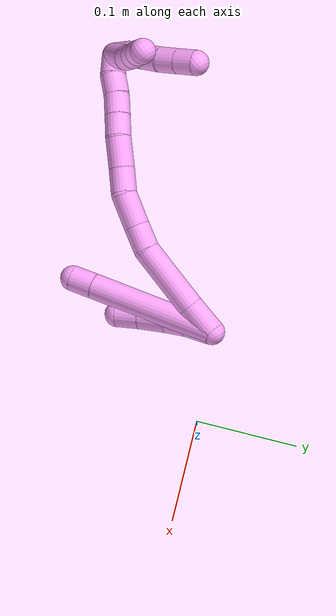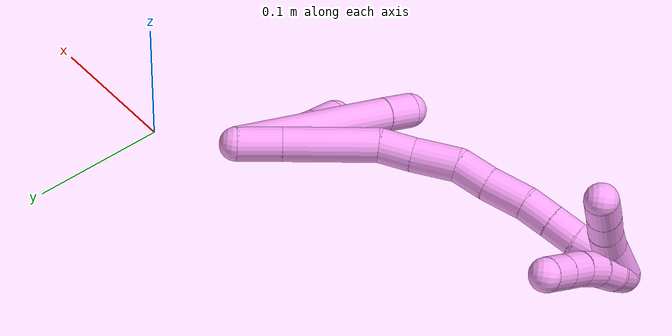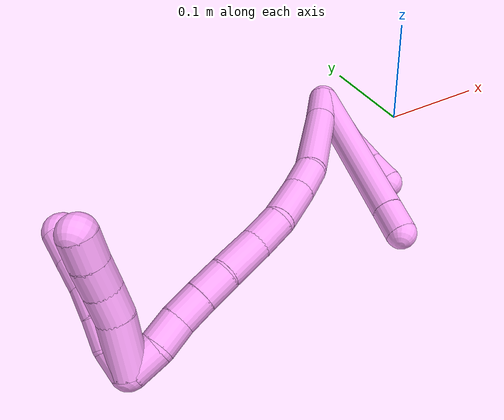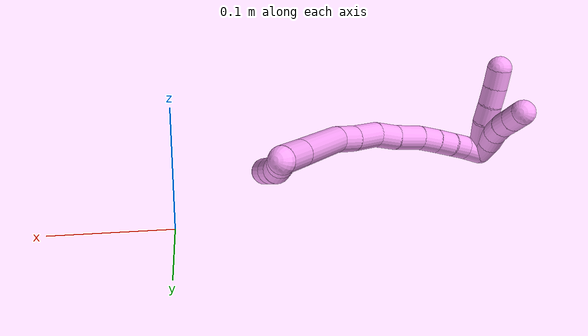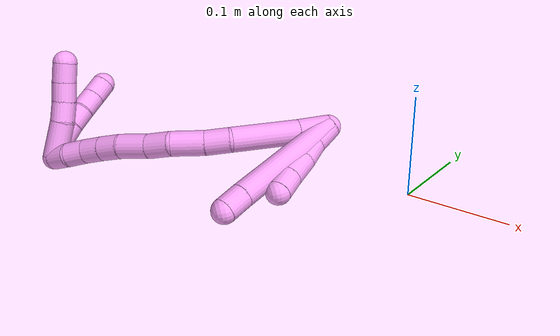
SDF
<sdf version="1.7">
 <world name="default">
  <model name="4">
   <static>0</static>
   <link name="4">
    <collision name="collision-cylinder-e_1_2_8">
     <pose>0.03073 0.013046 0.053865 -0.237629 0.506262 -0.061741</pose>
     <geometry><cylinder><radius>0.0125</radius><length>0.126744</length></cylinder></geometry>
     <surface>
      <friction><ode><mu>1.16</mu><mu2>1.16</mu2><slip1>0</slip1><slip2>0</slip2></ode></friction>
      <contact><ode><kp>1e+06</kp><kd>1</kd><max_vel>0</max_vel><min_depth>0.001</min_depth></ode></contact>
     </surface>
    </collision>
    <visual name="visual-cylinder-e_1_2_8">
     <pose>0.03073 0.013046 0.053865 -0.237629 0.506262 -0.061741</pose>
     <geometry><cylinder><radius>0.0125</radius><length>0.126744</length></cylinder></geometry>
     <material><ambient>1 0.65098 0.996078 1</ambient></material>
    </visual>
    <collision name="collision-cylinder-e_2_8_6">
     <pose>0.067341 0.02821 0.117536 -0.212623 0.530298 -0.057938</pose>
     <geometry><cylinder><radius>0.0125</radius><length>0.023256</length></cylinder></geometry>
     <surface>
      <friction><ode><mu>1.16</mu><mu2>1.16</mu2><slip1>0</slip1><slip2>0</slip2></ode></friction>
      <contact><ode><kp>1e+06</kp><kd>1</kd><max_vel>0</max_vel><min_depth>0.001</min_depth></ode></contact>
     </surface>
    </collision>
    <visual name="visual-cylinder-e_2_8_6">
     <pose>0.067341 0.02821 0.117536 -0.212623 0.530298 -0.057938</pose>
     <geometry><cylinder><radius>0.0125</radius><length>0.023256</length></cylinder></geometry>
     <material><ambient>1 0.65098 0.996078 1</ambient></material>
    </visual>
    <collision name="collision-cylinder-e_1_2_9">
     <pose>0.007643 0.001708 0.010732 -0.157833 0.612954 -0.050039</pose>
     <geometry><cylinder><radius>0.0125</radius><length>0.026571</length></cylinder></geometry>
     <surface>
      <friction><ode><mu>1.16</mu><mu2>1.16</mu2><slip1>0</slip1><slip2>0</slip2></ode></friction>
      <contact><ode><kp>1e+06</kp><kd>1</kd><max_vel>0</max_vel><min_depth>0.001</min_depth></ode></contact>
     </surface>
    </collision>
    <visual name="visual-cylinder-e_1_2_9">
     <pose>0.007643 0.001708 0.010732 -0.157833 0.612954 -0.050039</pose>
     <geometry><cylinder><radius>0.0125</radius><length>0.026571</length></cylinder></geometry>
     <material><ambient>1 0.65098 0.996078 1</ambient></material>
    </visual>
    <collision name="collision-cylinder-e_2_9_10">
     <pose>0.023115 0.004242 0.029582 -0.10144 0.764691 -0.040822</pose>
     <geometry><cylinder><radius>0.0125</radius><length>0.022615</length></cylinder></geometry>
     <surface>
      <friction><ode><mu>1.16</mu><mu2>1.16</mu2><slip1>0</slip1><slip2>0</slip2></ode></friction>
      <contact><ode><kp>1e+06</kp><kd>1</kd><max_vel>0</max_vel><min_depth>0.001</min_depth></ode></contact>
     </surface>
    </collision>
    <visual name="visual-cylinder-e_2_9_10">
     <pose>0.023115 0.004242 0.029582 -0.10144 0.764691 -0.040822</pose>
     <geometry><cylinder><radius>0.0125</radius><length>0.022615</length></cylinder></geometry>
     <material><ambient>1 0.65098 0.996078 1</ambient></material>
    </visual>
    <collision name="collision-cylinder-e_3_10_11">
     <pose>0.039854 0.008937 0.047694 -0.369249 0.693627 -0.134788</pose>
     <geometry><cylinder><radius>0.0125</radius><length>0.027876</length></cylinder></geometry>
     <surface>
      <friction><ode><mu>1.16</mu><mu2>1.16</mu2><slip1>0</slip1><slip2>0</slip2></ode></friction>
      <contact><ode><kp>1e+06</kp><kd>1</kd><max_vel>0</max_vel><min_depth>0.001</min_depth></ode></contact>
     </surface>
    </collision>
    <visual name="visual-cylinder-e_3_10_11">
     <pose>0.039854 0.008937 0.047694 -0.369249 0.693627 -0.134788</pose>
     <geometry><cylinder><radius>0.0125</radius><length>0.027876</length></cylinder></geometry>
     <material><ambient>1 0.65098 0.996078 1</ambient></material>
    </visual>
    <collision name="collision-cylinder-e_4_11_5">
     <pose>0.056443 0.01621 0.065499 -0.411117 0.733441 -0.159829</pose>
     <geometry><cylinder><radius>0.0125</radius><length>0.022937</length></cylinder></geometry>
     <surface>
      <friction><ode><mu>1.16</mu><mu2>1.16</mu2><slip1>0</slip1><slip2>0</slip2></ode></friction>
      <contact><ode><kp>1e+06</kp><kd>1</kd><max_vel>0</max_vel><min_depth>0.001</min_depth></ode></contact>
     </surface>
    </collision>
    <visual name="visual-cylinder-e_4_11_5">
     <pose>0.056443 0.01621 0.065499 -0.411117 0.733441 -0.159829</pose>
     <geometry><cylinder><radius>0.0125</radius><length>0.022937</length></cylinder></geometry>
     <material><ambient>1 0.65098 0.996078 1</ambient></material>
    </visual>
    <collision name="collision-cylinder-e_1_2_12">
     <pose>-0.000477 0.002046 0.015987 -0.127261 -0.029557 0.001883</pose>
     <geometry><cylinder><radius>0.0125</radius><length>0.032248</length></cylinder></geometry>
     <surface>
      <friction><ode><mu>1.16</mu><mu2>1.16</mu2><slip1>0</slip1><slip2>0</slip2></ode></friction>
      <contact><ode><kp>1e+06</kp><kd>1</kd><max_vel>0</max_vel><min_depth>0.001</min_depth></ode></contact>
     </surface>
    </collision>
    <visual name="visual-cylinder-e_1_2_12">
     <pose>-0.000477 0.002046 0.015987 -0.127261 -0.029557 0.001883</pose>
     <geometry><cylinder><radius>0.0125</radius><length>0.032248</length></cylinder></geometry>
     <material><ambient>1 0.65098 0.996078 1</ambient></material>
    </visual>
    <collision name="collision-cylinder-e_2_12_13">
     <pose>-0.003425 0.008414 0.065847 -0.126941 -0.07226 0.004595</pose>
     <geometry><cylinder><radius>0.0125</radius><length>0.068474</length></cylinder></geometry>
     <surface>
      <friction><ode><mu>1.16</mu><mu2>1.16</mu2><slip1>0</slip1><slip2>0</slip2></ode></friction>
      <contact><ode><kp>1e+06</kp><kd>1</kd><max_vel>0</max_vel><min_depth>0.001</min_depth></ode></contact>
     </surface>
    </collision>
    <visual name="visual-cylinder-e_2_12_13">
     <pose>-0.003425 0.008414 0.065847 -0.126941 -0.07226 0.004595</pose>
     <geometry><cylinder><radius>0.0125</radius><length>0.068474</length></cylinder></geometry>
     <material><ambient>1 0.65098 0.996078 1</ambient></material>
    </visual>
    <collision name="collision-cylinder-e_3_13_14">
     <pose>-0.008545 0.011226 0.11184 0.124029 -0.213554 -0.013311</pose>
     <geometry><cylinder><radius>0.0125</radius><length>0.024996</length></cylinder></geometry>
     <surface>
      <friction><ode><mu>1.16</mu><mu2>1.16</mu2><slip1>0</slip1><slip2>0</slip2></ode></friction>
      <contact><ode><kp>1e+06</kp><kd>1</kd><max_vel>0</max_vel><min_depth>0.001</min_depth></ode></contact>
     </surface>
    </collision>
    <visual name="visual-cylinder-e_3_13_14">
     <pose>-0.008545 0.011226 0.11184 0.124029 -0.213554 -0.013311</pose>
     <geometry><cylinder><radius>0.0125</radius><length>0.024996</length></cylinder></geometry>
     <material><ambient>1 0.65098 0.996078 1</ambient></material>
    </visual>
    <collision name="collision-cylinder-e_4_14_15">
     <pose>-0.015948 0.008712 0.139932 0.06271 -0.288736 -0.00912</pose>
     <geometry><cylinder><radius>0.0125</radius><length>0.033389</length></cylinder></geometry>
     <surface>
      <friction><ode><mu>1.16</mu><mu2>1.16</mu2><slip1>0</slip1><slip2>0</slip2></ode></friction>
      <contact><ode><kp>1e+06</kp><kd>1</kd><max_vel>0</max_vel><min_depth>0.001</min_depth></ode></contact>
     </surface>
    </collision>
    <visual name="visual-cylinder-e_4_14_15">
     <pose>-0.015948 0.008712 0.139932 0.06271 -0.288736 -0.00912</pose>
     <geometry><cylinder><radius>0.0125</radius><length>0.033389</length></cylinder></geometry>
     <material><ambient>1 0.65098 0.996078 1</ambient></material>
    </visual>
    <collision name="collision-cylinder-e_5_15_16">
     <pose>-0.02517 0.003016 0.166626 0.412601 -0.364689 -0.07714</pose>
     <geometry><cylinder><radius>0.0125</radius><length>0.025057</length></cylinder></geometry>
     <surface>
      <friction><ode><mu>1.16</mu><mu2>1.16</mu2><slip1>0</slip1><slip2>0</slip2></ode></friction>
      <contact><ode><kp>1e+06</kp><kd>1</kd><max_vel>0</max_vel><min_depth>0.001</min_depth></ode></contact>
     </surface>
    </collision>
    <visual name="visual-cylinder-e_5_15_16">
     <pose>-0.02517 0.003016 0.166626 0.412601 -0.364689 -0.07714</pose>
     <geometry><cylinder><radius>0.0125</radius><length>0.025057</length></cylinder></geometry>
     <material><ambient>1 0.65098 0.996078 1</ambient></material>
    </visual>
    <collision name="collision-cylinder-e_6_16_17">
     <pose>-0.036067 -0.006067 0.190784 0.315779 -0.426885 -0.06899</pose>
     <geometry><cylinder><radius>0.0125</radius><length>0.031058</length></cylinder></geometry>
     <surface>
      <friction><ode><mu>1.16</mu><mu2>1.16</mu2><slip1>0</slip1><slip2>0</slip2></ode></friction>
      <contact><ode><kp>1e+06</kp><kd>1</kd><max_vel>0</max_vel><min_depth>0.001</min_depth></ode></contact>
     </surface>
    </collision>
    <visual name="visual-cylinder-e_6_16_17">
     <pose>-0.036067 -0.006067 0.190784 0.315779 -0.426885 -0.06899</pose>
     <geometry><cylinder><radius>0.0125</radius><length>0.031058</length></cylinder></geometry>
     <material><ambient>1 0.65098 0.996078 1</ambient></material>
    </visual>
    <collision name="collision-cylinder-e_7_17_18">
     <pose>-0.046563 -0.015115 0.213293 0.474368 -0.379417 -0.092768</pose>
     <geometry><cylinder><radius>0.0125</radius><length>0.021958</length></cylinder></geometry>
     <surface>
      <friction><ode><mu>1.16</mu><mu2>1.16</mu2><slip1>0</slip1><slip2>0</slip2></ode></friction>
      <contact><ode><kp>1e+06</kp><kd>1</kd><max_vel>0</max_vel><min_depth>0.001</min_depth></ode></contact>
     </surface>
    </collision>
    <visual name="visual-cylinder-e_7_17_18">
     <pose>-0.046563 -0.015115 0.213293 0.474368 -0.379417 -0.092768</pose>
     <geometry><cylinder><radius>0.0125</radius><length>0.021958</length></cylinder></geometry>
     <material><ambient>1 0.65098 0.996078 1</ambient></material>
    </visual>
    <collision name="collision-cylinder-e_8_18_19">
     <pose>-0.054247 -0.024377 0.231127 0.483801 -0.350416 -0.087299</pose>
     <geometry><cylinder><radius>0.0125</radius><length>0.021077</length></cylinder></geometry>
     <surface>
      <friction><ode><mu>1.16</mu><mu2>1.16</mu2><slip1>0</slip1><slip2>0</slip2></ode></friction>
      <contact><ode><kp>1e+06</kp><kd>1</kd><max_vel>0</max_vel><min_depth>0.001</min_depth></ode></contact>
     </surface>
    </collision>
    <visual name="visual-cylinder-e_8_18_19">
     <pose>-0.054247 -0.024377 0.231127 0.483801 -0.350416 -0.087299</pose>
     <geometry><cylinder><radius>0.0125</radius><length>0.021077</length></cylinder></geometry>
     <material><ambient>1 0.65098 0.996078 1</ambient></material>
    </visual>
    <collision name="collision-cylinder-e_9_19_20">
     <pose>-0.060495 -0.032739 0.249153 0.385316 -0.257205 -0.050443</pose>
     <geometry><cylinder><radius>0.0125</radius><length>0.020674</length></cylinder></geometry>
     <surface>
      <friction><ode><mu>1.16</mu><mu2>1.16</mu2><slip1>0</slip1><slip2>0</slip2></ode></friction>
      <contact><ode><kp>1e+06</kp><kd>1</kd><max_vel>0</max_vel><min_depth>0.001</min_depth></ode></contact>
     </surface>
    </collision>
    <visual name="visual-cylinder-e_9_19_20">
     <pose>-0.060495 -0.032739 0.249153 0.385316 -0.257205 -0.050443</pose>
     <geometry><cylinder><radius>0.0125</radius><length>0.020674</length></cylinder></geometry>
     <material><ambient>1 0.65098 0.996078 1</ambient></material>
    </visual>
    <collision name="collision-cylinder-e_10_20_1">
     <pose>-0.067164 -0.042201 0.266299 0.626533 -0.393501 -0.12896</pose>
     <geometry><cylinder><radius>0.0125</radius><length>0.02107</length></cylinder></geometry>
     <surface>
      <friction><ode><mu>1.16</mu><mu2>1.16</mu2><slip1>0</slip1><slip2>0</slip2></ode></friction>
      <contact><ode><kp>1e+06</kp><kd>1</kd><max_vel>0</max_vel><min_depth>0.001</min_depth></ode></contact>
     </surface>
    </collision>
    <visual name="visual-cylinder-e_10_20_1">
     <pose>-0.067164 -0.042201 0.266299 0.626533 -0.393501 -0.12896</pose>
     <geometry><cylinder><radius>0.0125</radius><length>0.02107</length></cylinder></geometry>
     <material><ambient>1 0.65098 0.996078 1</ambient></material>
    </visual>
    <collision name="collision-cylinder-e_1_1_21">
     <pose>-0.079671 -0.046622 0.269019 -2.89783 -1.00995 2.70547</pose>
     <geometry><cylinder><radius>0.0125</radius><length>0.02</length></cylinder></geometry>
     <surface>
      <friction><ode><mu>1.16</mu><mu2>1.16</mu2><slip1>0</slip1><slip2>0</slip2></ode></friction>
      <contact><ode><kp>1e+06</kp><kd>1</kd><max_vel>0</max_vel><min_depth>0.001</min_depth></ode></contact>
     </surface>
    </collision>
    <visual name="visual-cylinder-e_1_1_21">
     <pose>-0.079671 -0.046622 0.269019 -2.89783 -1.00995 2.70547</pose>
     <geometry><cylinder><radius>0.0125</radius><length>0.02</length></cylinder></geometry>
     <material><ambient>1 0.65098 0.996078 1</ambient></material>
    </visual>
    <collision name="collision-cylinder-e_2_21_22">
     <pose>-0.095216 -0.043399 0.257063 -2.86342 -0.786267 2.49052</pose>
     <geometry><cylinder><radius>0.0125</radius><length>0.02</length></cylinder></geometry>
     <surface>
      <friction><ode><mu>1.16</mu><mu2>1.16</mu2><slip1>0</slip1><slip2>0</slip2></ode></friction>
      <contact><ode><kp>1e+06</kp><kd>1</kd><max_vel>0</max_vel><min_depth>0.001</min_depth></ode></contact>
     </surface>
    </collision>
    <visual name="visual-cylinder-e_2_21_22">
     <pose>-0.095216 -0.043399 0.257063 -2.86342 -0.786267 2.49052</pose>
     <geometry><cylinder><radius>0.0125</radius><length>0.02</length></cylinder></geometry>
     <material><ambient>1 0.65098 0.996078 1</ambient></material>
    </visual>
    <collision name="collision-cylinder-e_3_22_23">
     <pose>-0.109319 -0.040987 0.24317 -3.07527 -0.779025 2.98032</pose>
     <geometry><cylinder><radius>0.0125</radius><length>0.02</length></cylinder></geometry>
     <surface>
      <friction><ode><mu>1.16</mu><mu2>1.16</mu2><slip1>0</slip1><slip2>0</slip2></ode></friction>
      <contact><ode><kp>1e+06</kp><kd>1</kd><max_vel>0</max_vel><min_depth>0.001</min_depth></ode></contact>
     </surface>
    </collision>
    <visual name="visual-cylinder-e_3_22_23">
     <pose>-0.109319 -0.040987 0.24317 -3.07527 -0.779025 2.98032</pose>
     <geometry><cylinder><radius>0.0125</radius><length>0.02</length></cylinder></geometry>
     <material><ambient>1 0.65098 0.996078 1</ambient></material>
    </visual>
    <collision name="collision-cylinder-e_4_23_24">
     <pose>-0.123623 -0.041252 0.229251 3.03399 -0.81511 -2.89339</pose>
     <geometry><cylinder><radius>0.0125</radius><length>0.02</length></cylinder></geometry>
     <surface>
      <friction><ode><mu>1.16</mu><mu2>1.16</mu2><slip1>0</slip1><slip2>0</slip2></ode></friction>
      <contact><ode><kp>1e+06</kp><kd>1</kd><max_vel>0</max_vel><min_depth>0.001</min_depth></ode></contact>
     </surface>
    </collision>
    <visual name="visual-cylinder-e_4_23_24">
     <pose>-0.123623 -0.041252 0.229251 3.03399 -0.81511 -2.89339</pose>
     <geometry><cylinder><radius>0.0125</radius><length>0.02</length></cylinder></geometry>
     <material><ambient>1 0.65098 0.996078 1</ambient></material>
    </visual>
    <collision name="collision-cylinder-e_5_24_4">
     <pose>-0.138216 -0.042575 0.21564 3.0555 -0.820485 -2.94416</pose>
     <geometry><cylinder><radius>0.0125</radius><length>0.02</length></cylinder></geometry>
     <surface>
      <friction><ode><mu>1.16</mu><mu2>1.16</mu2><slip1>0</slip1><slip2>0</slip2></ode></friction>
      <contact><ode><kp>1e+06</kp><kd>1</kd><max_vel>0</max_vel><min_depth>0.001</min_depth></ode></contact>
     </surface>
    </collision>
    <visual name="visual-cylinder-e_5_24_4">
     <pose>-0.138216 -0.042575 0.21564 3.0555 -0.820485 -2.94416</pose>
     <geometry><cylinder><radius>0.0125</radius><length>0.02</length></cylinder></geometry>
     <material><ambient>1 0.65098 0.996078 1</ambient></material>
    </visual>
    <collision name="collision-cylinder-e_1_1_25">
     <pose>-0.084212 -0.036264 0.265628 -2.20435 -0.733126 1.29767</pose>
     <geometry><cylinder><radius>0.0125</radius><length>0.038881</length></cylinder></geometry>
     <surface>
      <friction><ode><mu>1.16</mu><mu2>1.16</mu2><slip1>0</slip1><slip2>0</slip2></ode></friction>
      <contact><ode><kp>1e+06</kp><kd>1</kd><max_vel>0</max_vel><min_depth>0.001</min_depth></ode></contact>
     </surface>
    </collision>
    <visual name="visual-cylinder-e_1_1_25">
     <pose>-0.084212 -0.036264 0.265628 -2.20435 -0.733126 1.29767</pose>
     <geometry><cylinder><radius>0.0125</radius><length>0.038881</length></cylinder></geometry>
     <material><ambient>1 0.65098 0.996078 1</ambient></material>
    </visual>
    <collision name="collision-cylinder-e_2_25_26">
     <pose>-0.10519 -0.018771 0.253687 -2.09576 -0.867167 1.35331</pose>
     <geometry><cylinder><radius>0.0125</radius><length>0.020901</length></cylinder></geometry>
     <surface>
      <friction><ode><mu>1.16</mu><mu2>1.16</mu2><slip1>0</slip1><slip2>0</slip2></ode></friction>
      <contact><ode><kp>1e+06</kp><kd>1</kd><max_vel>0</max_vel><min_depth>0.001</min_depth></ode></contact>
     </surface>
    </collision>
    <visual name="visual-cylinder-e_2_25_26">
     <pose>-0.10519 -0.018771 0.253687 -2.09576 -0.867167 1.35331</pose>
     <geometry><cylinder><radius>0.0125</radius><length>0.020901</length></cylinder></geometry>
     <material><ambient>1 0.65098 0.996078 1</ambient></material>
    </visual>
    <collision name="collision-cylinder-e_3_26_27">
     <pose>-0.120697 -0.006766 0.247812 -1.95475 -0.848842 1.18053</pose>
     <geometry><cylinder><radius>0.0125</radius><length>0.020088</length></cylinder></geometry>
     <surface>
      <friction><ode><mu>1.16</mu><mu2>1.16</mu2><slip1>0</slip1><slip2>0</slip2></ode></friction>
      <contact><ode><kp>1e+06</kp><kd>1</kd><max_vel>0</max_vel><min_depth>0.001</min_depth></ode></contact>
     </surface>
    </collision>
    <visual name="visual-cylinder-e_3_26_27">
     <pose>-0.120697 -0.006766 0.247812 -1.95475 -0.848842 1.18053</pose>
     <geometry><cylinder><radius>0.0125</radius><length>0.020088</length></cylinder></geometry>
     <material><ambient>1 0.65098 0.996078 1</ambient></material>
    </visual>
    <collision name="collision-cylinder-e_4_27_3">
     <pose>-0.135534 0.005673 0.242405 -2.0059 -0.811311 1.18506</pose>
     <geometry><cylinder><radius>0.0125</radius><length>0.020131</length></cylinder></geometry>
     <surface>
      <friction><ode><mu>1.16</mu><mu2>1.16</mu2><slip1>0</slip1><slip2>0</slip2></ode></friction>
      <contact><ode><kp>1e+06</kp><kd>1</kd><max_vel>0</max_vel><min_depth>0.001</min_depth></ode></contact>
     </surface>
    </collision>
    <visual name="visual-cylinder-e_4_27_3">
     <pose>-0.135534 0.005673 0.242405 -2.0059 -0.811311 1.18506</pose>
     <geometry><cylinder><radius>0.0125</radius><length>0.020131</length></cylinder></geometry>
     <material><ambient>1 0.65098 0.996078 1</ambient></material>
    </visual>
    <collision name="collision-sphere-3">
     <pose>-0.142833 0.011958 0.239484 0 -0 0</pose>
     <geometry><sphere><radius>0.0125</radius></sphere></geometry>
     <surface>
      <friction><ode><mu>1.16</mu><mu2>1.16</mu2><slip1>0</slip1><slip2>0</slip2></ode></friction>
      <contact><ode><kp>1e+06</kp><kd>1</kd><max_vel>0</max_vel><min_depth>0.001</min_depth></ode></contact>
     </surface>
    </collision>
    <visual name="visual-sphere-3">
     <pose>-0.142833 0.011958 0.239484 0 -0 0</pose>
     <geometry><sphere><radius>0.0125</radius></sphere></geometry>
     <material><ambient>1 0.65098 0.996078 1</ambient></material>
    </visual>
    <collision name="collision-sphere-27">
     <pose>-0.128235 -0.000611 0.245326 0 -0 0</pose>
     <geometry><sphere><radius>0.0125</radius></sphere></geometry>
     <surface>
      <friction><ode><mu>1.16</mu><mu2>1.16</mu2><slip1>0</slip1><slip2>0</slip2></ode></friction>
      <contact><ode><kp>1e+06</kp><kd>1</kd><max_vel>0</max_vel><min_depth>0.001</min_depth></ode></contact>
     </surface>
    </collision>
    <visual name="visual-sphere-27">
     <pose>-0.128235 -0.000611 0.245326 0 -0 0</pose>
     <geometry><sphere><radius>0.0125</radius></sphere></geometry>
     <material><ambient>1 0.65098 0.996078 1</ambient></material>
    </visual>
    <collision name="collision-sphere-26">
     <pose>-0.113159 -0.01292 0.250299 0 -0 0</pose>
     <geometry><sphere><radius>0.0125</radius></sphere></geometry>
     <surface>
      <friction><ode><mu>1.16</mu><mu2>1.16</mu2><slip1>0</slip1><slip2>0</slip2></ode></friction>
      <contact><ode><kp>1e+06</kp><kd>1</kd><max_vel>0</max_vel><min_depth>0.001</min_depth></ode></contact>
     </surface>
    </collision>
    <visual name="visual-sphere-26">
     <pose>-0.113159 -0.01292 0.250299 0 -0 0</pose>
     <geometry><sphere><radius>0.0125</radius></sphere></geometry>
     <material><ambient>1 0.65098 0.996078 1</ambient></material>
    </visual>
    <collision name="collision-sphere-25">
     <pose>-0.097222 -0.024621 0.257076 0 -0 0</pose>
     <geometry><sphere><radius>0.0125</radius></sphere></geometry>
     <surface>
      <friction><ode><mu>1.16</mu><mu2>1.16</mu2><slip1>0</slip1><slip2>0</slip2></ode></friction>
      <contact><ode><kp>1e+06</kp><kd>1</kd><max_vel>0</max_vel><min_depth>0.001</min_depth></ode></contact>
     </surface>
    </collision>
    <visual name="visual-sphere-25">
     <pose>-0.097222 -0.024621 0.257076 0 -0 0</pose>
     <geometry><sphere><radius>0.0125</radius></sphere></geometry>
     <material><ambient>1 0.65098 0.996078 1</ambient></material>
    </visual>
    <collision name="collision-sphere-4">
     <pose>-0.145531 -0.043161 0.208846 0 -0 0</pose>
     <geometry><sphere><radius>0.0125</radius></sphere></geometry>
     <surface>
      <friction><ode><mu>1.16</mu><mu2>1.16</mu2><slip1>0</slip1><slip2>0</slip2></ode></friction>
      <contact><ode><kp>1e+06</kp><kd>1</kd><max_vel>0</max_vel><min_depth>0.001</min_depth></ode></contact>
     </surface>
    </collision>
    <visual name="visual-sphere-4">
     <pose>-0.145531 -0.043161 0.208846 0 -0 0</pose>
     <geometry><sphere><radius>0.0125</radius></sphere></geometry>
     <material><ambient>1 0.65098 0.996078 1</ambient></material>
    </visual>
    <collision name="collision-sphere-24">
     <pose>-0.130901 -0.041989 0.222433 0 -0 0</pose>
     <geometry><sphere><radius>0.0125</radius></sphere></geometry>
     <surface>
      <friction><ode><mu>1.16</mu><mu2>1.16</mu2><slip1>0</slip1><slip2>0</slip2></ode></friction>
      <contact><ode><kp>1e+06</kp><kd>1</kd><max_vel>0</max_vel><min_depth>0.001</min_depth></ode></contact>
     </surface>
    </collision>
    <visual name="visual-sphere-24">
     <pose>-0.130901 -0.041989 0.222433 0 -0 0</pose>
     <geometry><sphere><radius>0.0125</radius></sphere></geometry>
     <material><ambient>1 0.65098 0.996078 1</ambient></material>
    </visual>
    <collision name="collision-sphere-23">
     <pose>-0.116345 -0.040516 0.236069 0 -0 0</pose>
     <geometry><sphere><radius>0.0125</radius></sphere></geometry>
     <surface>
      <friction><ode><mu>1.16</mu><mu2>1.16</mu2><slip1>0</slip1><slip2>0</slip2></ode></friction>
      <contact><ode><kp>1e+06</kp><kd>1</kd><max_vel>0</max_vel><min_depth>0.001</min_depth></ode></contact>
     </surface>
    </collision>
    <visual name="visual-sphere-23">
     <pose>-0.116345 -0.040516 0.236069 0 -0 0</pose>
     <geometry><sphere><radius>0.0125</radius></sphere></geometry>
     <material><ambient>1 0.65098 0.996078 1</ambient></material>
    </visual>
    <collision name="collision-sphere-22">
     <pose>-0.102293 -0.041459 0.25027 0 -0 0</pose>
     <geometry><sphere><radius>0.0125</radius></sphere></geometry>
     <surface>
      <friction><ode><mu>1.16</mu><mu2>1.16</mu2><slip1>0</slip1><slip2>0</slip2></ode></friction>
      <contact><ode><kp>1e+06</kp><kd>1</kd><max_vel>0</max_vel><min_depth>0.001</min_depth></ode></contact>
     </surface>
    </collision>
    <visual name="visual-sphere-22">
     <pose>-0.102293 -0.041459 0.25027 0 -0 0</pose>
     <geometry><sphere><radius>0.0125</radius></sphere></geometry>
     <material><ambient>1 0.65098 0.996078 1</ambient></material>
    </visual>
    <collision name="collision-sphere-21">
     <pose>-0.088139 -0.045339 0.263857 0 -0 0</pose>
     <geometry><sphere><radius>0.0125</radius></sphere></geometry>
     <surface>
      <friction><ode><mu>1.16</mu><mu2>1.16</mu2><slip1>0</slip1><slip2>0</slip2></ode></friction>
      <contact><ode><kp>1e+06</kp><kd>1</kd><max_vel>0</max_vel><min_depth>0.001</min_depth></ode></contact>
     </surface>
    </collision>
    <visual name="visual-sphere-21">
     <pose>-0.088139 -0.045339 0.263857 0 -0 0</pose>
     <geometry><sphere><radius>0.0125</radius></sphere></geometry>
     <material><ambient>1 0.65098 0.996078 1</ambient></material>
    </visual>
    <collision name="collision-sphere-1">
     <pose>-0.071203 -0.047906 0.27418 0 -0 0</pose>
     <geometry><sphere><radius>0.0125</radius></sphere></geometry>
     <surface>
      <friction><ode><mu>1.16</mu><mu2>1.16</mu2><slip1>0</slip1><slip2>0</slip2></ode></friction>
      <contact><ode><kp>1e+06</kp><kd>1</kd><max_vel>0</max_vel><min_depth>0.001</min_depth></ode></contact>
     </surface>
    </collision>
    <visual name="visual-sphere-1">
     <pose>-0.071203 -0.047906 0.27418 0 -0 0</pose>
     <geometry><sphere><radius>0.0125</radius></sphere></geometry>
     <material><ambient>1 0.65098 0.996078 1</ambient></material>
    </visual>
    <collision name="collision-sphere-11">
     <pose>0.048765 0.012805 0.05769 0 -0 0</pose>
     <geometry><sphere><radius>0.0125</radius></sphere></geometry>
     <surface>
      <friction><ode><mu>1.16</mu><mu2>1.16</mu2><slip1>0</slip1><slip2>0</slip2></ode></friction>
      <contact><ode><kp>1e+06</kp><kd>1</kd><max_vel>0</max_vel><min_depth>0.001</min_depth></ode></contact>
     </surface>
    </collision>
    <visual name="visual-sphere-11">
     <pose>0.048765 0.012805 0.05769 0 -0 0</pose>
     <geometry><sphere><radius>0.0125</radius></sphere></geometry>
     <material><ambient>1 0.65098 0.996078 1</ambient></material>
    </visual>
    <collision name="collision-sphere-10">
     <pose>0.030943 0.005069 0.037699 0 -0 0</pose>
     <geometry><sphere><radius>0.0125</radius></sphere></geometry>
     <surface>
      <friction><ode><mu>1.16</mu><mu2>1.16</mu2><slip1>0</slip1><slip2>0</slip2></ode></friction>
      <contact><ode><kp>1e+06</kp><kd>1</kd><max_vel>0</max_vel><min_depth>0.001</min_depth></ode></contact>
     </surface>
    </collision>
    <visual name="visual-sphere-10">
     <pose>0.030943 0.005069 0.037699 0 -0 0</pose>
     <geometry><sphere><radius>0.0125</radius></sphere></geometry>
     <material><ambient>1 0.65098 0.996078 1</ambient></material>
    </visual>
    <collision name="collision-sphere-6">
     <pose>0.073222 0.030327 0.127341 0 -0 0</pose>
     <geometry><sphere><radius>0.0125</radius></sphere></geometry>
     <surface>
      <friction><ode><mu>1.16</mu><mu2>1.16</mu2><slip1>0</slip1><slip2>0</slip2></ode></friction>
      <contact><ode><kp>1e+06</kp><kd>1</kd><max_vel>0</max_vel><min_depth>0.001</min_depth></ode></contact>
     </surface>
    </collision>
    <visual name="visual-sphere-6">
     <pose>0.073222 0.030327 0.127341 0 -0 0</pose>
     <geometry><sphere><radius>0.0125</radius></sphere></geometry>
     <material><ambient>1 0.65098 0.996078 1</ambient></material>
    </visual>
    <collision name="collision-sphere-9">
     <pose>0.015286 0.003416 0.021464 0 -0 0</pose>
     <geometry><sphere><radius>0.0125</radius></sphere></geometry>
     <surface>
      <friction><ode><mu>1.16</mu><mu2>1.16</mu2><slip1>0</slip1><slip2>0</slip2></ode></friction>
      <contact><ode><kp>1e+06</kp><kd>1</kd><max_vel>0</max_vel><min_depth>0.001</min_depth></ode></contact>
     </surface>
    </collision>
    <visual name="visual-sphere-9">
     <pose>0.015286 0.003416 0.021464 0 -0 0</pose>
     <geometry><sphere><radius>0.0125</radius></sphere></geometry>
     <material><ambient>1 0.65098 0.996078 1</ambient></material>
    </visual>
    <collision name="collision-sphere-2">
     <geometry><sphere><radius>0.0125</radius></sphere></geometry>
     <surface>
      <friction><ode><mu>1.16</mu><mu2>1.16</mu2><slip1>0</slip1><slip2>0</slip2></ode></friction>
      <contact><ode><kp>1e+06</kp><kd>1</kd><max_vel>0</max_vel><min_depth>0.001</min_depth></ode></contact>
     </surface>
    </collision>
    <visual name="visual-sphere-2">
     <geometry><sphere><radius>0.0125</radius></sphere></geometry>
     <material><ambient>1 0.65098 0.996078 1</ambient></material>
    </visual>
    <collision name="collision-sphere-19">
     <pose>-0.057865 -0.028981 0.239889 0 -0 0</pose>
     <geometry><sphere><radius>0.0125</radius></sphere></geometry>
     <surface>
      <friction><ode><mu>1.16</mu><mu2>1.16</mu2><slip1>0</slip1><slip2>0</slip2></ode></friction>
      <contact><ode><kp>1e+06</kp><kd>1</kd><max_vel>0</max_vel><min_depth>0.001</min_depth></ode></contact>
     </surface>
    </collision>
    <visual name="visual-sphere-19">
     <pose>-0.057865 -0.028981 0.239889 0 -0 0</pose>
     <geometry><sphere><radius>0.0125</radius></sphere></geometry>
     <material><ambient>1 0.65098 0.996078 1</ambient></material>
    </visual>
    <collision name="collision-sphere-8">
     <pose>0.06146 0.026093 0.107731 0 -0 0</pose>
     <geometry><sphere><radius>0.0125</radius></sphere></geometry>
     <surface>
      <friction><ode><mu>1.16</mu><mu2>1.16</mu2><slip1>0</slip1><slip2>0</slip2></ode></friction>
      <contact><ode><kp>1e+06</kp><kd>1</kd><max_vel>0</max_vel><min_depth>0.001</min_depth></ode></contact>
     </surface>
    </collision>
    <visual name="visual-sphere-8">
     <pose>0.06146 0.026093 0.107731 0 -0 0</pose>
     <geometry><sphere><radius>0.0125</radius></sphere></geometry>
     <material><ambient>1 0.65098 0.996078 1</ambient></material>
    </visual>
    <collision name="collision-sphere-5">
     <pose>0.06412 0.019614 0.073309 0 -0 0</pose>
     <geometry><sphere><radius>0.0125</radius></sphere></geometry>
     <surface>
      <friction><ode><mu>1.16</mu><mu2>1.16</mu2><slip1>0</slip1><slip2>0</slip2></ode></friction>
      <contact><ode><kp>1e+06</kp><kd>1</kd><max_vel>0</max_vel><min_depth>0.001</min_depth></ode></contact>
     </surface>
    </collision>
    <visual name="visual-sphere-5">
     <pose>0.06412 0.019614 0.073309 0 -0 0</pose>
     <geometry><sphere><radius>0.0125</radius></sphere></geometry>
     <material><ambient>1 0.65098 0.996078 1</ambient></material>
    </visual>
    <collision name="collision-sphere-12">
     <pose>-0.000953 0.004091 0.031973 0 -0 0</pose>
     <geometry><sphere><radius>0.0125</radius></sphere></geometry>
     <surface>
      <friction><ode><mu>1.16</mu><mu2>1.16</mu2><slip1>0</slip1><slip2>0</slip2></ode></friction>
      <contact><ode><kp>1e+06</kp><kd>1</kd><max_vel>0</max_vel><min_depth>0.001</min_depth></ode></contact>
     </surface>
    </collision>
    <visual name="visual-sphere-12">
     <pose>-0.000953 0.004091 0.031973 0 -0 0</pose>
     <geometry><sphere><radius>0.0125</radius></sphere></geometry>
     <material><ambient>1 0.65098 0.996078 1</ambient></material>
    </visual>
    <collision name="collision-sphere-13">
     <pose>-0.005897 0.012737 0.09972 0 -0 0</pose>
     <geometry><sphere><radius>0.0125</radius></sphere></geometry>
     <surface>
      <friction><ode><mu>1.16</mu><mu2>1.16</mu2><slip1>0</slip1><slip2>0</slip2></ode></friction>
      <contact><ode><kp>1e+06</kp><kd>1</kd><max_vel>0</max_vel><min_depth>0.001</min_depth></ode></contact>
     </surface>
    </collision>
    <visual name="visual-sphere-13">
     <pose>-0.005897 0.012737 0.09972 0 -0 0</pose>
     <geometry><sphere><radius>0.0125</radius></sphere></geometry>
     <material><ambient>1 0.65098 0.996078 1</ambient></material>
    </visual>
    <collision name="collision-sphere-14">
     <pose>-0.011194 0.009715 0.12396 0 -0 0</pose>
     <geometry><sphere><radius>0.0125</radius></sphere></geometry>
     <surface>
      <friction><ode><mu>1.16</mu><mu2>1.16</mu2><slip1>0</slip1><slip2>0</slip2></ode></friction>
      <contact><ode><kp>1e+06</kp><kd>1</kd><max_vel>0</max_vel><min_depth>0.001</min_depth></ode></contact>
     </surface>
    </collision>
    <visual name="visual-sphere-14">
     <pose>-0.011194 0.009715 0.12396 0 -0 0</pose>
     <geometry><sphere><radius>0.0125</radius></sphere></geometry>
     <material><ambient>1 0.65098 0.996078 1</ambient></material>
    </visual>
    <collision name="collision-sphere-15">
     <pose>-0.020701 0.00771 0.155903 0 -0 0</pose>
     <geometry><sphere><radius>0.0125</radius></sphere></geometry>
     <surface>
      <friction><ode><mu>1.16</mu><mu2>1.16</mu2><slip1>0</slip1><slip2>0</slip2></ode></friction>
      <contact><ode><kp>1e+06</kp><kd>1</kd><max_vel>0</max_vel><min_depth>0.001</min_depth></ode></contact>
     </surface>
    </collision>
    <visual name="visual-sphere-15">
     <pose>-0.020701 0.00771 0.155903 0 -0 0</pose>
     <geometry><sphere><radius>0.0125</radius></sphere></geometry>
     <material><ambient>1 0.65098 0.996078 1</ambient></material>
    </visual>
    <collision name="collision-sphere-16">
     <pose>-0.029638 -0.001677 0.177348 0 -0 0</pose>
     <geometry><sphere><radius>0.0125</radius></sphere></geometry>
     <surface>
      <friction><ode><mu>1.16</mu><mu2>1.16</mu2><slip1>0</slip1><slip2>0</slip2></ode></friction>
      <contact><ode><kp>1e+06</kp><kd>1</kd><max_vel>0</max_vel><min_depth>0.001</min_depth></ode></contact>
     </surface>
    </collision>
    <visual name="visual-sphere-16">
     <pose>-0.029638 -0.001677 0.177348 0 -0 0</pose>
     <geometry><sphere><radius>0.0125</radius></sphere></geometry>
     <material><ambient>1 0.65098 0.996078 1</ambient></material>
    </visual>
    <collision name="collision-sphere-17">
     <pose>-0.042497 -0.010457 0.204221 0 -0 0</pose>
     <geometry><sphere><radius>0.0125</radius></sphere></geometry>
     <surface>
      <friction><ode><mu>1.16</mu><mu2>1.16</mu2><slip1>0</slip1><slip2>0</slip2></ode></friction>
      <contact><ode><kp>1e+06</kp><kd>1</kd><max_vel>0</max_vel><min_depth>0.001</min_depth></ode></contact>
     </surface>
    </collision>
    <visual name="visual-sphere-17">
     <pose>-0.042497 -0.010457 0.204221 0 -0 0</pose>
     <geometry><sphere><radius>0.0125</radius></sphere></geometry>
     <material><ambient>1 0.65098 0.996078 1</ambient></material>
    </visual>
    <collision name="collision-sphere-18">
     <pose>-0.05063 -0.019773 0.222365 0 -0 0</pose>
     <geometry><sphere><radius>0.0125</radius></sphere></geometry>
     <surface>
      <friction><ode><mu>1.16</mu><mu2>1.16</mu2><slip1>0</slip1><slip2>0</slip2></ode></friction>
      <contact><ode><kp>1e+06</kp><kd>1</kd><max_vel>0</max_vel><min_depth>0.001</min_depth></ode></contact>
     </surface>
    </collision>
    <visual name="visual-sphere-18">
     <pose>-0.05063 -0.019773 0.222365 0 -0 0</pose>
     <geometry><sphere><radius>0.0125</radius></sphere></geometry>
     <material><ambient>1 0.65098 0.996078 1</ambient></material>
    </visual>
    <collision name="collision-sphere-20">
     <pose>-0.063124 -0.036496 0.258417 0 -0 0</pose>
     <geometry><sphere><radius>0.0125</radius></sphere></geometry>
     <surface>
      <friction><ode><mu>1.16</mu><mu2>1.16</mu2><slip1>0</slip1><slip2>0</slip2></ode></friction>
      <contact><ode><kp>1e+06</kp><kd>1</kd><max_vel>0</max_vel><min_depth>0.001</min_depth></ode></contact>
     </surface>
    </collision>
    <visual name="visual-sphere-20">
     <pose>-0.063124 -0.036496 0.258417 0 -0 0</pose>
     <geometry><sphere><radius>0.0125</radius></sphere></geometry>
     <material><ambient>1 0.65098 0.996078 1</ambient></material>
    </visual>
    <inertial>
     <pose>-0.027377 -0.005813 0.141369 0 -0 0</pose>
     <mass>0.75</mass>
     <inertia>
      <ixx>0.000201</ixx>
      <ixy>0</ixy>
      <ixz>0</ixz>
      <iyy>0.000247</iyy>
      <iyz>0</iyz>
      <izz>-8.5e-05</izz>
     </inertia>
    </inertial>
   </link>
   <pose>-0.088782 -0.007046 0.052504 1.77883 0.635609 -0.559728</pose>
  </model>
 </world>
</sdf>
